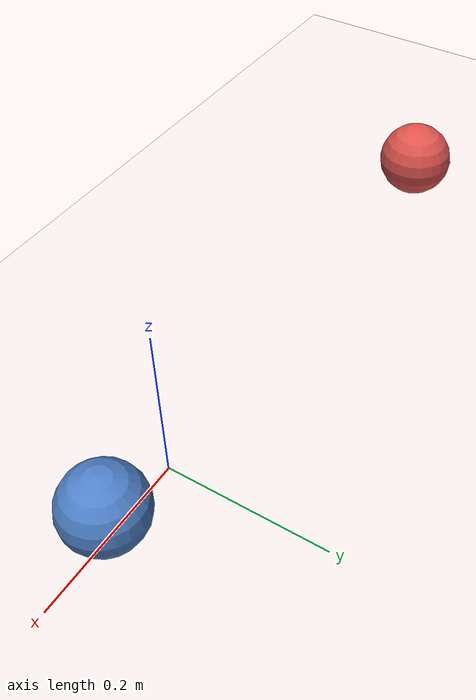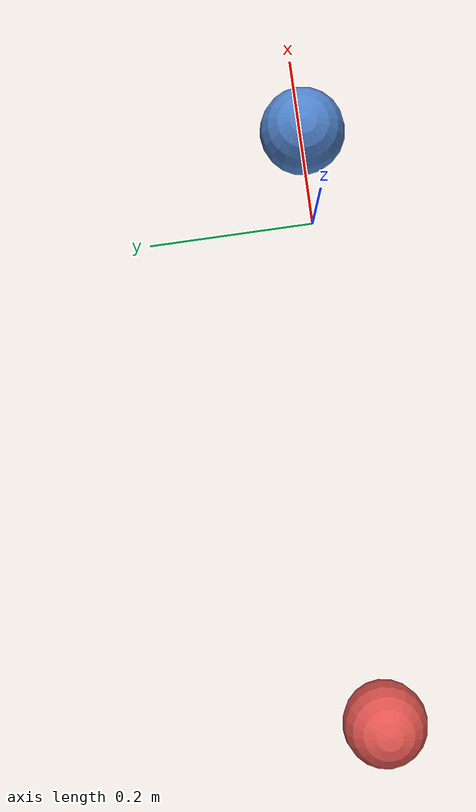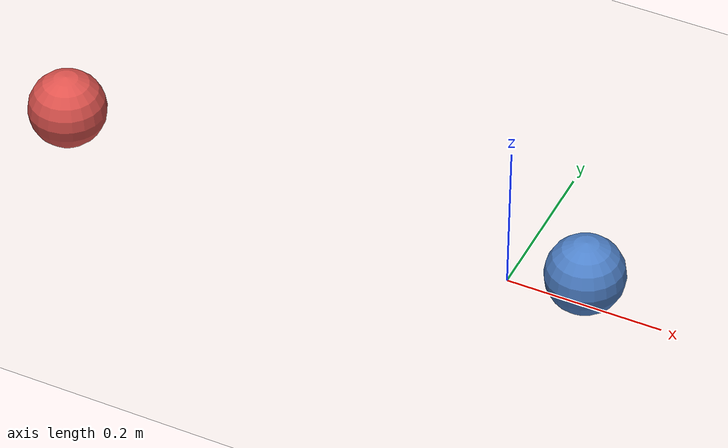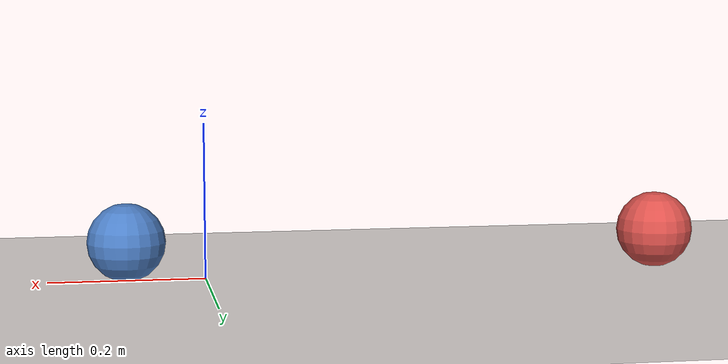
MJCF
<mujoco model="elastic_collision">
  <compiler angle="radian" coordinate="local" autolimits="true"/>
  <option timestep="0.0002" gravity="0 0 -9.81" integrator="implicitfast"
          impratio="10" cone="elliptic"/>

  <visual>
    <headlight diffuse="0 0 0" ambient="0.50 0.48 0.55" specular="0 0 0"/>
    <rgba haze="0.94 0.91 0.90 1"/>
    <global azimuth="120" elevation="-15" offwidth="1920" offheight="1080" fovy="36"/>
    <quality shadowsize="8192" offsamples="8"/>
    <map shadowclip="6" shadowscale="0.7"/>
  </visual>

  <asset>
    <texture type="skybox" builtin="flat"
             rgb1="0.74 0.68 0.86" rgb2="0.74 0.68 0.86"
             width="512" height="512" mark="none" markrgb="0 0 0"/>
    <material name="floor_mat"  rgba="0.94 0.91 0.90 1" specular="0" shininess="0"/>
    <material name="track_wood" rgba="0.78 0.65 0.40 1" specular="0.15" shininess="0.2"/>
    <material name="track_dark" rgba="0.55 0.42 0.28 1" specular="0.15" shininess="0.2"/>
    <material name="ball_a"     rgba="0.86 0.32 0.30 1" specular="0.55" shininess="0.7"/>
    <material name="ball_b"     rgba="0.30 0.50 0.78 1" specular="0.55" shininess="0.7"/>
  </asset>

  <default>
    <geom solref="-200000 -20" solimp="0.999 0.9999 0.0001"/>
  </default>

  <worldbody>
    <light pos="0 0 12" dir="-0.30 0.55 -1" directional="true" castshadow="true"
           diffuse="0.85 0.82 0.78" specular="0.15 0.15 0.15"/>
    <light pos="0 0 8" dir="0.40 -0.30 -1" directional="true" castshadow="false"
           diffuse="0.28 0.28 0.34" specular="0 0 0"/>

    <geom name="floor" type="plane" size="40 40 0.1" material="floor_mat"
          friction="0 0 0"/>

    <!-- No track / no walls — just two balls on a frictionless floor.
         Ball center z = ball radius (0.05) so they rest on the floor. -->
    <body name="ballA" pos="-0.60 0 0.05">
      <freejoint/>
      <geom type="sphere" size="0.05" mass="0.20" material="ball_a"
            friction="0 0 0"/>
    </body>

    <body name="ballB" pos="0.10 0 0.05">
      <freejoint/>
      <geom type="sphere" size="0.05" mass="0.20" material="ball_b"
            friction="0 0 0"/>
    </body>

    <!-- Camera: nearly side-on from -y, framed lower since there's no track. -->
    <camera name="cam" pos="0 -2.10 0.30" fovy="32"
            xyaxes="1 0 0   0 0.08 0.997"/>
  </worldbody>
</mujoco>
